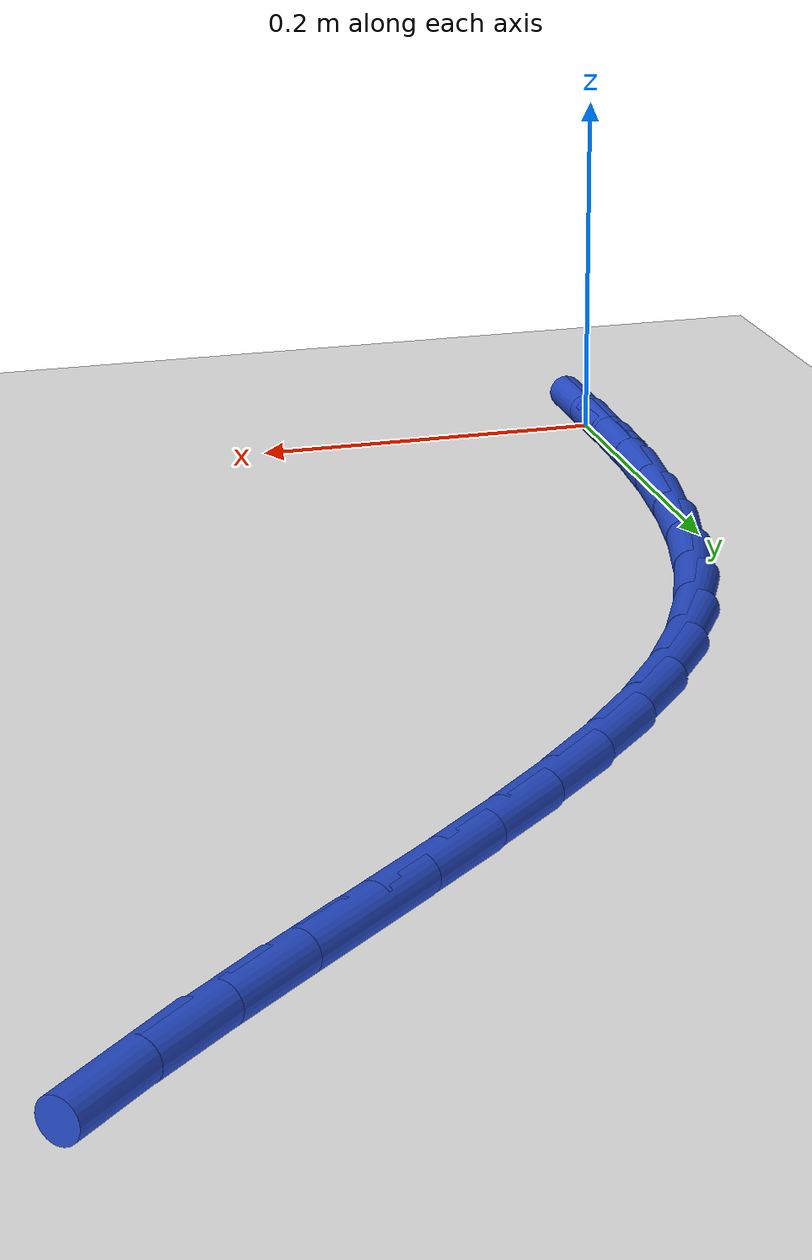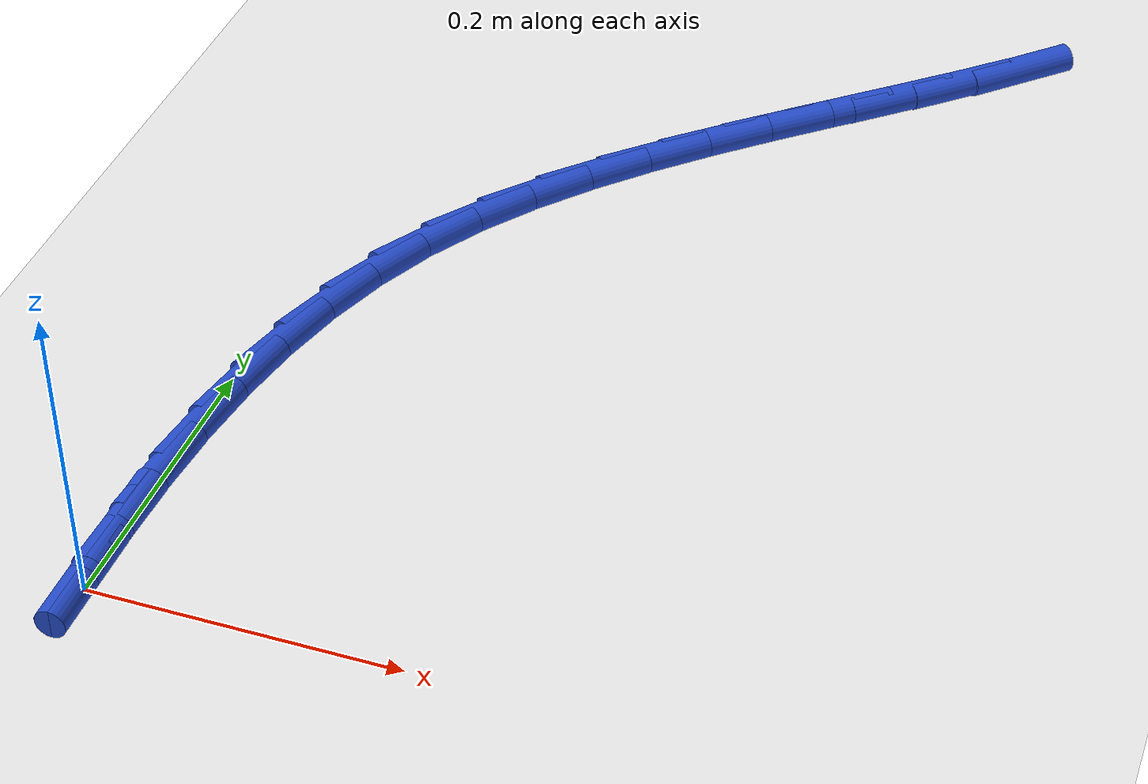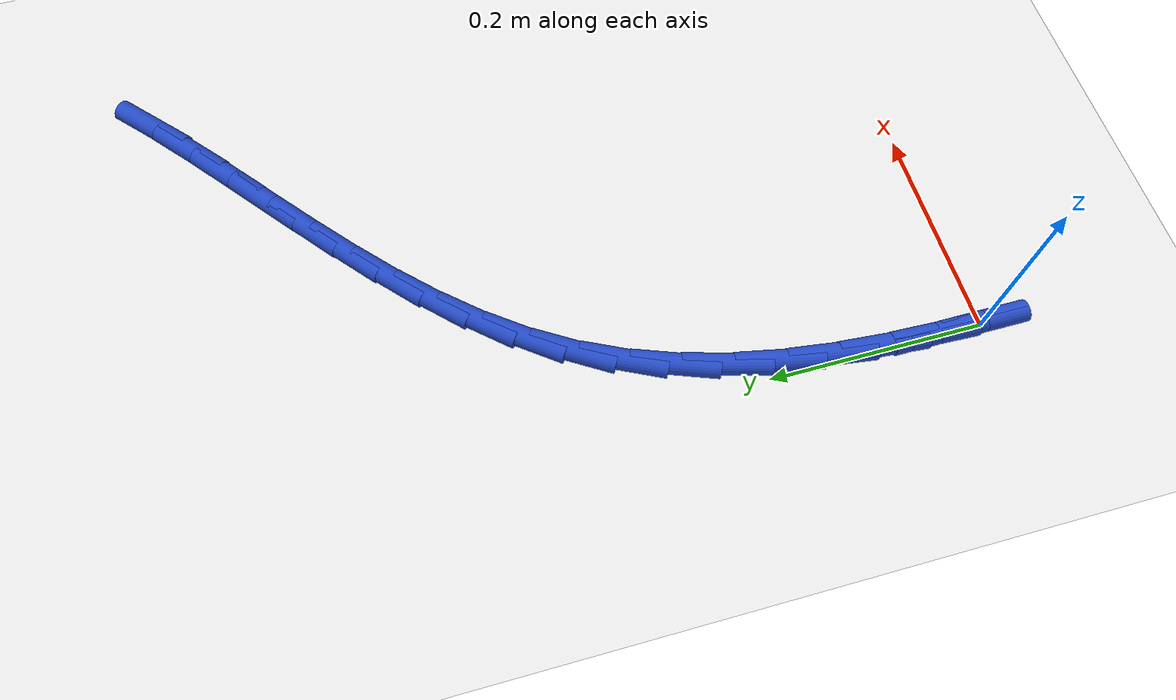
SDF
<sdf version="1.6">
 <world name="default">
  <model name="ground_plane">
   <static>1</static>
   <link name="link">
    <collision name="collision">
     <geometry><plane><normal>0 0 1</normal><size>100 100</size></plane></geometry>
     <surface><friction><ode><mu>100</mu><mu2>50</mu2></ode></friction></surface>
    </collision>
    <visual name="visual">
     <cast_shadows>0</cast_shadows>
     <geometry><plane><normal>0 0 1</normal><size>100 100</size></plane></geometry>
     <material>
      <script><uri>file://media/materials/scripts/gazebo.material</uri><name>Gazebo/WhiteGlow</name></script>
     </material>
    </visual>
   </link>
  </model>
  <model name="line">
   <link name="link_0">
    <pose>-6.938893903907228e-18 1.1102230246251565e-16 0.01 0 1.57 -1.5698272240018842</pose>
    <collision name="collision">
     <geometry><cylinder><radius>0.01</radius><length>0.08</length></cylinder></geometry>
    </collision>
    <visual name="visual">
     <material>
      <script><name>Gazebo/Blue</name><uri>file://media/materials/scripts/gazebo.material</uri></script>
     </material>
     <geometry><cylinder><radius>0.01</radius><length>0.08</length></cylinder></geometry>
    </visual>
   </link>
   <link name="link_1">
    <pose>-4.6224713853509084e-05 0.04769844821003116 0.01 0 1.57 1.5362279938505008</pose>
    <collision name="collision">
     <geometry><cylinder><radius>0.01</radius><length>0.08</length></cylinder></geometry>
    </collision>
    <visual name="visual">
     <material>
      <script><name>Gazebo/Blue</name><uri>file://media/materials/scripts/gazebo.material</uri></script>
     </material>
     <geometry><cylinder><radius>0.01</radius><length>0.08</length></cylinder></geometry>
    </visual>
   </link>
   <link name="link_2">
    <pose>0.0015978520212375734 0.09523969966779892 0.01 0 1.57 1.4924991982904947</pose>
    <collision name="collision">
     <geometry><cylinder><radius>0.01</radius><length>0.08</length></cylinder></geometry>
    </collision>
    <visual name="visual">
     <material>
      <script><name>Gazebo/Blue</name><uri>file://media/materials/scripts/gazebo.material</uri></script>
     </material>
     <geometry><cylinder><radius>0.01</radius><length>0.08</length></cylinder></geometry>
    </visual>
   </link>
   <link name="link_3">
    <pose>0.00529207738342137 0.14232537534292586 0.01 0 1.57 1.4398004333818892</pose>
    <collision name="collision">
     <geometry><cylinder><radius>0.01</radius><length>0.08</length></cylinder></geometry>
    </collision>
    <visual name="visual">
     <material>
      <script><name>Gazebo/Blue</name><uri>file://media/materials/scripts/gazebo.material</uri></script>
     </material>
     <geometry><cylinder><radius>0.01</radius><length>0.08</length></cylinder></geometry>
    </visual>
   </link>
   <link name="link_4">
    <pose>0.011396298550846005 0.1886570962050344 0.01 0 1.57 1.3772646589824638</pose>
    <collision name="collision">
     <geometry><cylinder><radius>0.01</radius><length>0.08</length></cylinder></geometry>
    </collision>
    <visual name="visual">
     <material>
      <script><name>Gazebo/Blue</name><uri>file://media/materials/scripts/gazebo.material</uri></script>
     </material>
     <geometry><cylinder><radius>0.01</radius><length>0.08</length></cylinder></geometry>
    </visual>
   </link>
   <link name="link_5">
    <pose>0.020270362701659616 0.23393648322374697 0.01 0 1.57 1.304052633067474</pose>
    <collision name="collision">
     <geometry><cylinder><radius>0.01</radius><length>0.08</length></cylinder></geometry>
    </collision>
    <visual name="visual">
     <material>
      <script><name>Gazebo/Blue</name><uri>file://media/materials/scripts/gazebo.material</uri></script>
     </material>
     <geometry><cylinder><radius>0.01</radius><length>0.08</length></cylinder></geometry>
    </visual>
   </link>
   <link name="link_6">
    <pose>0.032274117014010326 0.27786515736868606 0.01 0 1.57 1.2195438127848641</pose>
    <collision name="collision">
     <geometry><cylinder><radius>0.01</radius><length>0.08</length></cylinder></geometry>
    </collision>
    <visual name="visual">
     <material>
      <script><name>Gazebo/Blue</name><uri>file://media/materials/scripts/gazebo.material</uri></script>
     </material>
     <geometry><cylinder><radius>0.01</radius><length>0.08</length></cylinder></geometry>
    </visual>
   </link>
   <link name="link_7">
    <pose>0.04776740866604626 0.32014473960947404 0.01 0 1.57 1.1236136834559944</pose>
    <collision name="collision">
     <geometry><cylinder><radius>0.01</radius><length>0.08</length></cylinder></geometry>
    </collision>
    <visual name="visual">
     <material>
      <script><name>Gazebo/Blue</name><uri>file://media/materials/scripts/gazebo.material</uri></script>
     </material>
     <geometry><cylinder><radius>0.01</radius><length>0.08</length></cylinder></geometry>
    </visual>
   </link>
   <link name="link_8">
    <pose>0.06711008483591555 0.3604768509157334 0.01 0 1.57 1.0208637279485628</pose>
    <collision name="collision">
     <geometry><cylinder><radius>0.01</radius><length>0.08</length></cylinder></geometry>
    </collision>
    <visual name="visual">
     <material>
      <script><name>Gazebo/Blue</name><uri>file://media/materials/scripts/gazebo.material</uri></script>
     </material>
     <geometry><cylinder><radius>0.01</radius><length>0.08</length></cylinder></geometry>
    </visual>
   </link>
   <link name="link_9">
    <pose>0.09051583271065346 0.3986583702780393 0.01 0 1.57 0.9292621860353677</pose>
    <collision name="collision">
     <geometry><cylinder><radius>0.01</radius><length>0.08</length></cylinder></geometry>
    </collision>
    <visual name="visual">
     <material>
      <script><name>Gazebo/Blue</name><uri>file://media/materials/scripts/gazebo.material</uri></script>
     </material>
     <geometry><cylinder><radius>0.01</radius><length>0.08</length></cylinder></geometry>
    </visual>
   </link>
   <link name="link_10">
    <pose>0.11757848440501183 0.4348901597948855 0.01 0 1.57 0.853887762720206</pose>
    <collision name="collision">
     <geometry><cylinder><radius>0.01</radius><length>0.08</length></cylinder></geometry>
    </collision>
    <visual name="visual">
     <material>
      <script><name>Gazebo/Blue</name><uri>file://media/materials/scripts/gazebo.material</uri></script>
     </material>
     <geometry><cylinder><radius>0.01</radius><length>0.08</length></cylinder></geometry>
    </visual>
   </link>
   <link name="link_11">
    <pose>0.1477275806050789 0.46948015653264685 0.01 0 1.57 0.7943641029480094</pose>
    <collision name="collision">
     <geometry><cylinder><radius>0.01</radius><length>0.08</length></cylinder></geometry>
    </collision>
    <visual name="visual">
     <material>
      <script><name>Gazebo/Blue</name><uri>file://media/materials/scripts/gazebo.material</uri></script>
     </material>
     <geometry><cylinder><radius>0.01</radius><length>0.08</length></cylinder></geometry>
    </visual>
   </link>
   <link name="link_12">
    <pose>0.18039266084863775 0.5027362983060931 0.01 0 1.57 0.749800554762584</pose>
    <collision name="collision">
     <geometry><cylinder><radius>0.01</radius><length>0.08</length></cylinder></geometry>
    </collision>
    <visual name="visual">
     <material>
      <script><name>Gazebo/Blue</name><uri>file://media/materials/scripts/gazebo.material</uri></script>
     </material>
     <geometry><cylinder><radius>0.01</radius><length>0.08</length></cylinder></geometry>
    </visual>
   </link>
   <link name="link_13">
    <pose>0.21500326467347164 0.5349665229299937 0.01 0 1.57 0.719219979925705</pose>
    <collision name="collision">
     <geometry><cylinder><radius>0.01</radius><length>0.08</length></cylinder></geometry>
    </collision>
    <visual name="visual">
     <material>
      <script><name>Gazebo/Blue</name><uri>file://media/materials/scripts/gazebo.material</uri></script>
     </material>
     <geometry><cylinder><radius>0.01</radius><length>0.08</length></cylinder></geometry>
    </visual>
   </link>
   <link name="link_14">
    <pose>0.25098893161736335 0.5664787682191179 0.01 0 1.57 0.7018128583905135</pose>
    <collision name="collision">
     <geometry><cylinder><radius>0.01</radius><length>0.08</length></cylinder></geometry>
    </collision>
    <visual name="visual">
     <material>
      <script><name>Gazebo/Blue</name><uri>file://media/materials/scripts/gazebo.material</uri></script>
     </material>
     <geometry><cylinder><radius>0.01</radius><length>0.08</length></cylinder></geometry>
    </visual>
   </link>
   <link name="link_15">
    <pose>0.2877792012180962 0.597580971988235 0.01 0 1.57 0.6970677124238571</pose>
    <collision name="collision">
     <geometry><cylinder><radius>0.01</radius><length>0.08</length></cylinder></geometry>
    </collision>
    <visual name="visual">
     <material>
      <script><name>Gazebo/Blue</name><uri>file://media/materials/scripts/gazebo.material</uri></script>
     </material>
     <geometry><cylinder><radius>0.01</radius><length>0.08</length></cylinder></geometry>
    </visual>
   </link>
   <link name="link_16">
    <pose>0.3248036130134533 0.6285810720521144 0.01 0 1.57 0.7048271385815194</pose>
    <collision name="collision">
     <geometry><cylinder><radius>0.01</radius><length>0.08</length></cylinder></geometry>
    </collision>
    <visual name="visual">
     <material>
      <script><name>Gazebo/Blue</name><uri>file://media/materials/scripts/gazebo.material</uri></script>
     </material>
     <geometry><cylinder><radius>0.01</radius><length>0.08</length></cylinder></geometry>
    </visual>
   </link>
   <link name="link_17">
    <pose>0.36149170654121765 0.6597870062255258 0.01 0 1.57 0.7252995529724084</pose>
    <collision name="collision">
     <geometry><cylinder><radius>0.01</radius><length>0.08</length></cylinder></geometry>
    </collision>
    <visual name="visual">
     <material>
      <script><name>Gazebo/Blue</name><uri>file://media/materials/scripts/gazebo.material</uri></script>
     </material>
     <geometry><cylinder><radius>0.01</radius><length>0.08</length></cylinder></geometry>
    </visual>
   </link>
   <link name="link_18">
    <pose>0.3972730213391723 0.6915067123232381 0.01 0 1.57 0.7590351079931867</pose>
    <collision name="collision">
     <geometry><cylinder><radius>0.01</radius><length>0.08</length></cylinder></geometry>
    </collision>
    <visual name="visual">
     <material>
      <script><name>Gazebo/Blue</name><uri>file://media/materials/scripts/gazebo.material</uri></script>
     </material>
     <geometry><cylinder><radius>0.01</radius><length>0.08</length></cylinder></geometry>
    </visual>
   </link>
   <link name="link_170">
    <pose>-2.2551405187698492e-17 3.191891195797325e-16 0.01 0 1.57 -1.567816547123176</pose>
    <collision name="collision">
     <geometry><cylinder><radius>0.01</radius><length>0.08</length></cylinder></geometry>
    </collision>
    <visual name="visual">
     <material>
      <script><name>Gazebo/Blue</name><uri>file://media/materials/scripts/gazebo.material</uri></script>
     </material>
     <geometry><cylinder><radius>0.01</radius><length>0.08</length></cylinder></geometry>
    </visual>
   </link>
   <link name="link_171">
    <pose>-0.00014218374586318864 0.047716053100060746 0.01 0 1.57 -1.5678165471231755</pose>
    <collision name="collision">
     <geometry><cylinder><radius>0.01</radius><length>0.08</length></cylinder></geometry>
    </collision>
    <visual name="visual">
     <material>
      <script><name>Gazebo/Blue</name><uri>file://media/materials/scripts/gazebo.material</uri></script>
     </material>
     <geometry><cylinder><radius>0.01</radius><length>0.08</length></cylinder></geometry>
    </visual>
   </link>
  </model>
 </world>
</sdf>
